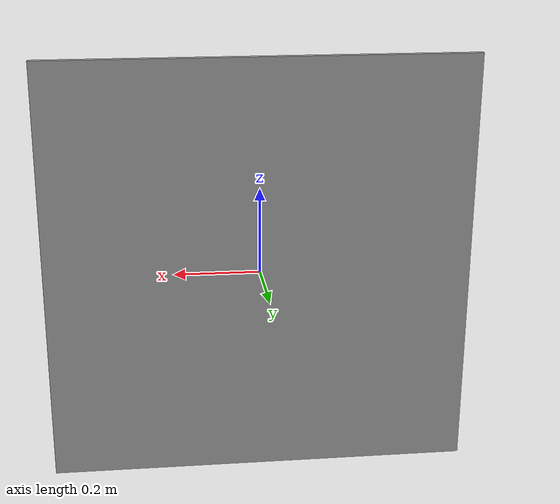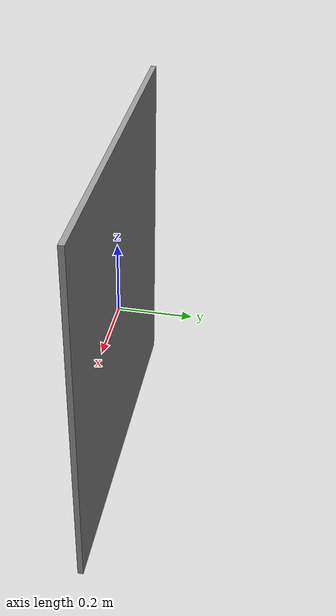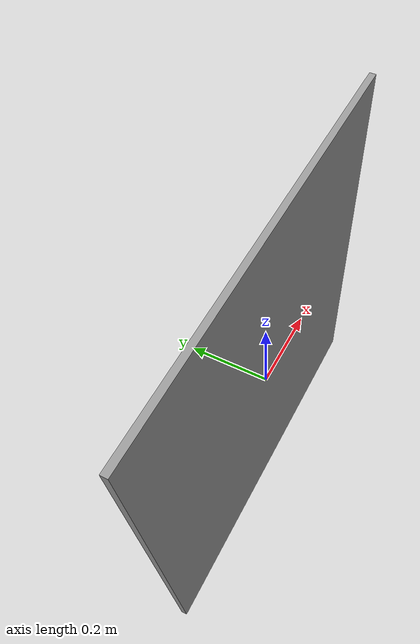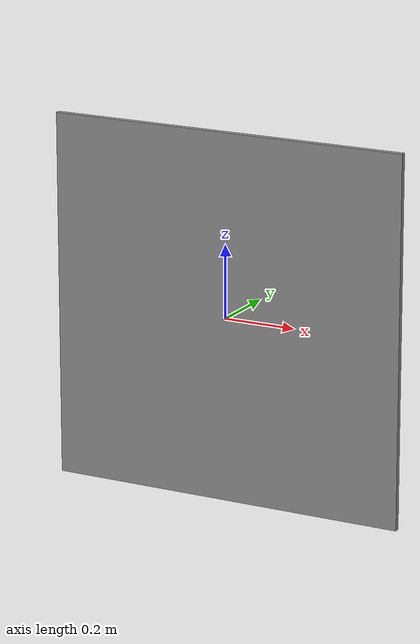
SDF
<?xml version="1.0"?>
<sdf version="1.6">
  <model name="grey_box">
    <static>true</static>
    <link name="robot_link">
      <visual name="body_visual">
        <geometry>
          <box>
            <size>1 0.015 1</size>
          </box>
	</geometry>
        <material>
          <script>
            <name>Gazebo/Grey</name>
            <uri>file://media/materials/scripts/gazebo.material</uri>
          </script>
          <shader type='pixel'>
            <normal_map>__default__</normal_map>
          </shader>
          <ambient>0.3 0.3 0.3 1</ambient>
          <diffuse>0.7 0.7 0.7 1</diffuse>
          <specular>0.01 0.01 0.01 1</specular>
          <emissive>0 0 0 1</emissive>
        </material>
      </visual>
    </link>
  </model>
</sdf>
